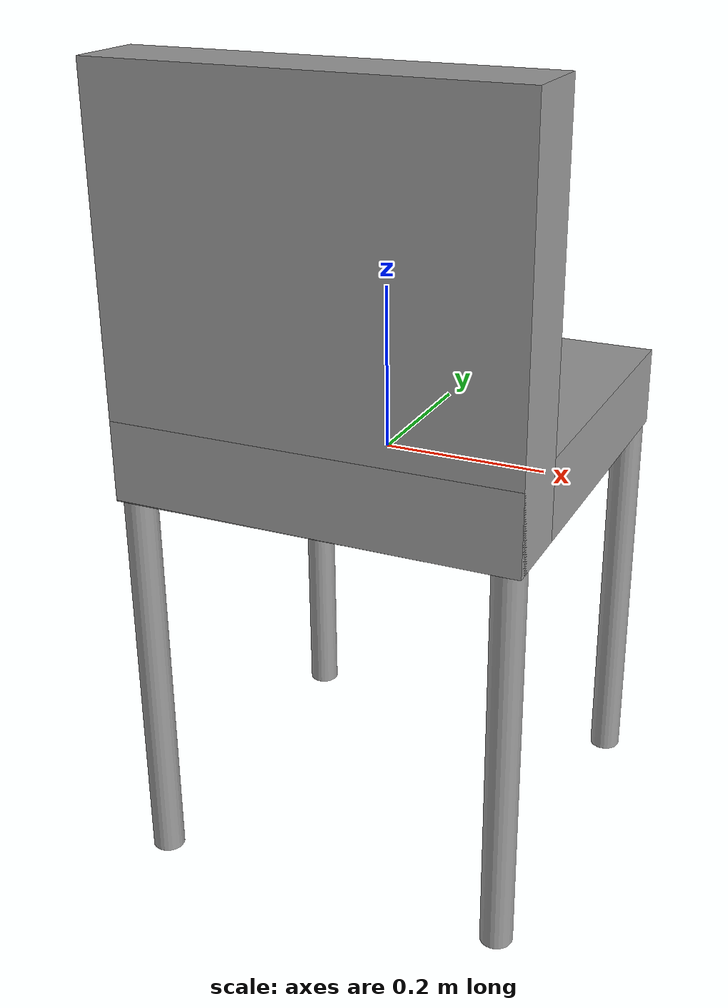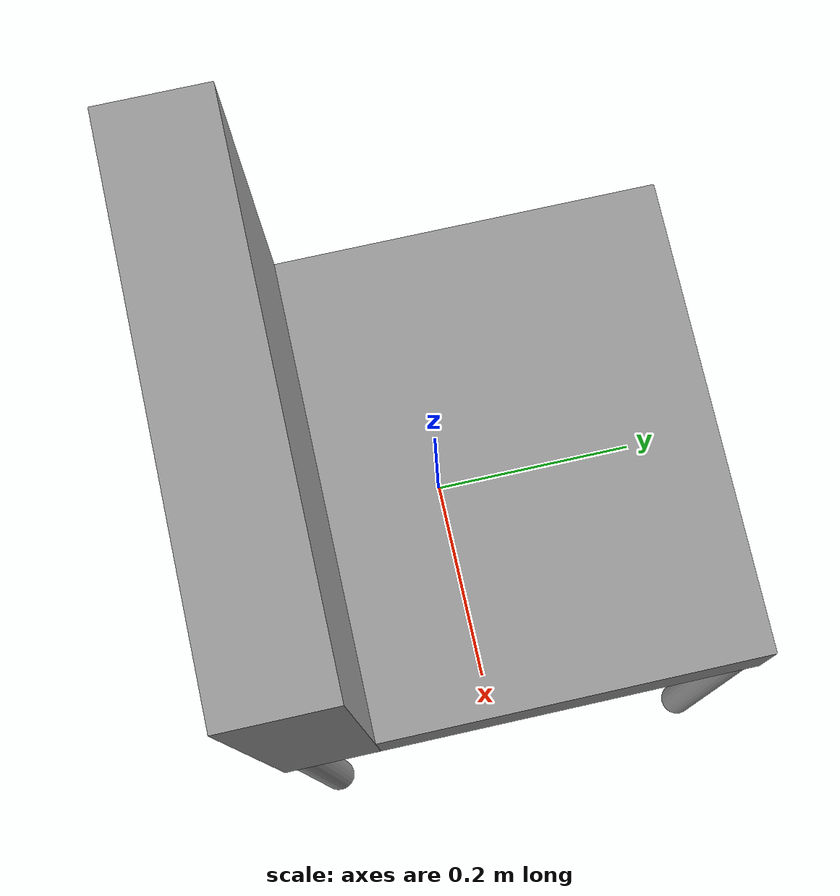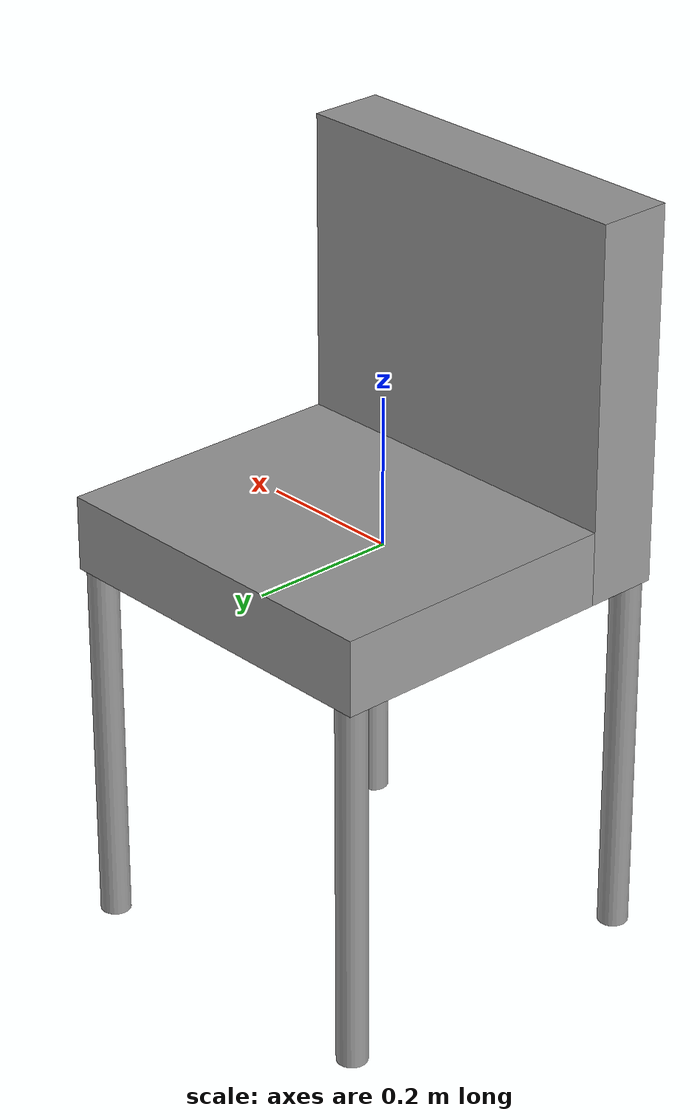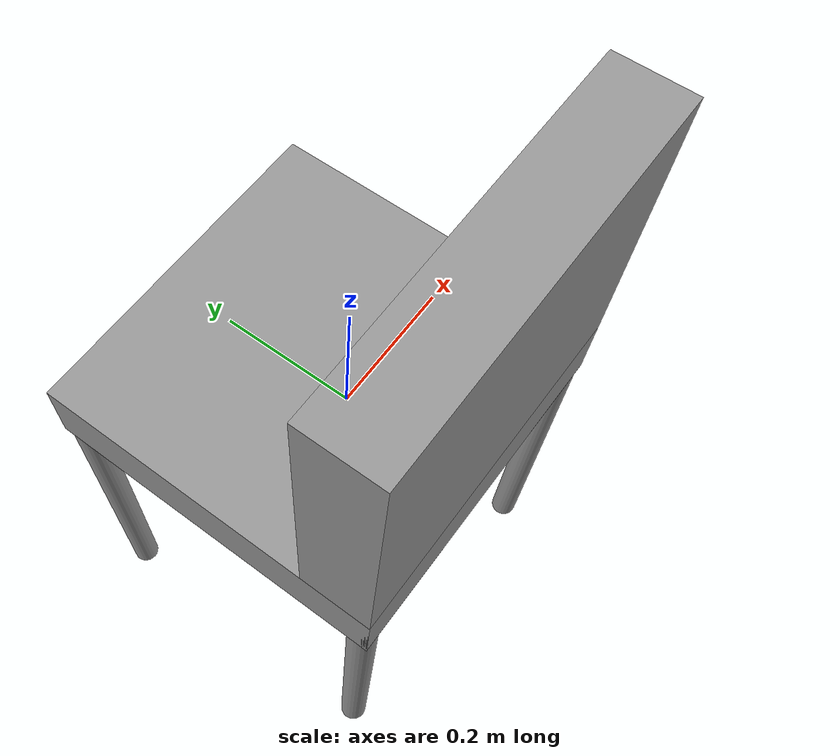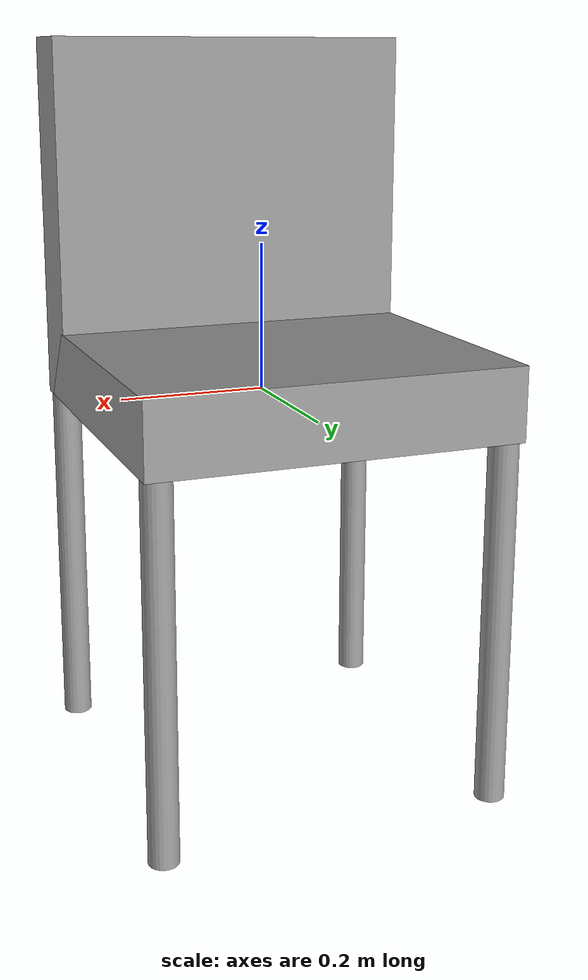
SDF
<?xml version='1.0'?>
<sdf version='1.6'>
  <model name='chair'>
    <link name='link_0'>
      <inertial>
        <mass>1</mass>
        <inertia>
          <ixx>0.145833</ixx>
          <ixy>0</ixy>
          <ixz>0</ixz>
          <iyy>0.145833</iyy>
          <iyz>0</iyz>
          <izz>0.125</izz>
        </inertia>
        <pose frame=''>0 0 0 0 -0 0</pose>
      </inertial>
      <pose frame=''>-0.23 -0.19667 -0.280001 0 -0 0</pose>
      <gravity>1</gravity>
      <self_collide>0</self_collide>
      <kinematic>0</kinematic>
      <enable_wind>0</enable_wind>
      <visual name='visual'>
        <pose frame=''>0 0 0 0 -0 0</pose>
        <geometry>
          <cylinder>
            <radius>0.02</radius>
            <length>0.5</length>
          </cylinder>
        </geometry>
        <material>
          <lighting>1</lighting>
          <script>
            <uri>file://media/materials/scripts/gazebo.material</uri>
            <name>Gazebo/Grey</name>
          </script>
          <shader type='vertex'>
            <normal_map>__default__</normal_map>
          </shader>
          <ambient>0.3 0.3 0.3 1</ambient>
          <diffuse>0.7 0.7 0.7 1</diffuse>
          <specular>0.01 0.01 0.01 1</specular>
          <emissive>0 0 0 1</emissive>
        </material>
        <transparency>0</transparency>
        <cast_shadows>1</cast_shadows>
      </visual>
      <collision name='collision'>
        <laser_retro>0</laser_retro>
        <max_contacts>10</max_contacts>
        <pose frame=''>0 0 0 0 -0 0</pose>
        <geometry>
          <cylinder>
            <radius>0.02</radius>
            <length>0.5</length>
          </cylinder>
        </geometry>
        <surface>
          <friction>
            <ode>
              <mu>1</mu>
              <mu2>1</mu2>
              <fdir1>0 0 0</fdir1>
              <slip1>0</slip1>
              <slip2>0</slip2>
            </ode>
            <torsional>
              <coefficient>1</coefficient>
              <patch_radius>0</patch_radius>
              <surface_radius>0</surface_radius>
              <use_patch_radius>1</use_patch_radius>
              <ode>
                <slip>0</slip>
              </ode>
            </torsional>
          </friction>
          <bounce>
            <restitution_coefficient>0</restitution_coefficient>
            <threshold>1e+06</threshold>
          </bounce>
          <contact>
            <collide_without_contact>0</collide_without_contact>
            <collide_without_contact_bitmask>1</collide_without_contact_bitmask>
            <collide_bitmask>1</collide_bitmask>
            <ode>
              <soft_cfm>0</soft_cfm>
              <soft_erp>0.2</soft_erp>
              <kp>1e+13</kp>
              <kd>1</kd>
              <max_vel>0.01</max_vel>
              <min_depth>0</min_depth>
            </ode>
            <bullet>
              <split_impulse>1</split_impulse>
              <split_impulse_penetration_threshold>-0.01</split_impulse_penetration_threshold>
              <soft_cfm>0</soft_cfm>
              <soft_erp>0.2</soft_erp>
              <kp>1e+13</kp>
              <kd>1</kd>
            </bullet>
          </contact>
        </surface>
      </collision>
    </link>
    <link name='link_0_clone'>
      <inertial>
        <mass>1</mass>
        <inertia>
          <ixx>0.145833</ixx>
          <ixy>0</ixy>
          <ixz>0</ixz>
          <iyy>0.145833</iyy>
          <iyz>0</iyz>
          <izz>0.125</izz>
        </inertia>
        <pose frame=''>0 0 0 0 -0 0</pose>
      </inertial>
      <pose frame=''>0.23 -0.19667 -0.280001 0 -0 0</pose>
      <gravity>1</gravity>
      <self_collide>0</self_collide>
      <kinematic>0</kinematic>
      <enable_wind>0</enable_wind>
      <visual name='visual'>
        <pose frame=''>0 0 0 0 -0 0</pose>
        <geometry>
          <cylinder>
            <radius>0.02</radius>
            <length>0.5</length>
          </cylinder>
        </geometry>
        <material>
          <lighting>1</lighting>
          <script>
            <uri>file://media/materials/scripts/gazebo.material</uri>
            <name>Gazebo/Grey</name>
          </script>
          <shader type='vertex'>
            <normal_map>__default__</normal_map>
          </shader>
          <ambient>0.3 0.3 0.3 1</ambient>
          <diffuse>0.7 0.7 0.7 1</diffuse>
          <specular>0.01 0.01 0.01 1</specular>
          <emissive>0 0 0 1</emissive>
        </material>
        <transparency>0</transparency>
        <cast_shadows>1</cast_shadows>
      </visual>
      <collision name='collision'>
        <laser_retro>0</laser_retro>
        <max_contacts>10</max_contacts>
        <pose frame=''>0 0 0 0 -0 0</pose>
        <geometry>
          <cylinder>
            <radius>0.02</radius>
            <length>0.5</length>
          </cylinder>
        </geometry>
        <surface>
          <friction>
            <ode>
              <mu>1</mu>
              <mu2>1</mu2>
              <fdir1>0 0 0</fdir1>
              <slip1>0</slip1>
              <slip2>0</slip2>
            </ode>
            <torsional>
              <coefficient>1</coefficient>
              <patch_radius>0</patch_radius>
              <surface_radius>0</surface_radius>
              <use_patch_radius>1</use_patch_radius>
              <ode>
                <slip>0</slip>
              </ode>
            </torsional>
          </friction>
          <bounce>
            <restitution_coefficient>0</restitution_coefficient>
            <threshold>1e+06</threshold>
          </bounce>
          <contact>
            <collide_without_contact>0</collide_without_contact>
            <collide_without_contact_bitmask>1</collide_without_contact_bitmask>
            <collide_bitmask>1</collide_bitmask>
            <ode>
              <soft_cfm>0</soft_cfm>
              <soft_erp>0.2</soft_erp>
              <kp>1e+13</kp>
              <kd>1</kd>
              <max_vel>0.01</max_vel>
              <min_depth>0</min_depth>
            </ode>
            <bullet>
              <split_impulse>1</split_impulse>
              <split_impulse_penetration_threshold>-0.01</split_impulse_penetration_threshold>
              <soft_cfm>0</soft_cfm>
              <soft_erp>0.2</soft_erp>
              <kp>1e+13</kp>
              <kd>1</kd>
            </bullet>
          </contact>
        </surface>
      </collision>
    </link>
    <link name='link_0_clone_0'>
      <inertial>
        <mass>1</mass>
        <inertia>
          <ixx>0.145833</ixx>
          <ixy>0</ixy>
          <ixz>0</ixz>
          <iyy>0.145833</iyy>
          <iyz>0</iyz>
          <izz>0.125</izz>
        </inertia>
        <pose frame=''>0 0 0 0 -0 0</pose>
      </inertial>
      <pose frame=''>0.23 0.26333 -0.280001 0 -0 0</pose>
      <gravity>1</gravity>
      <self_collide>0</self_collide>
      <kinematic>0</kinematic>
      <enable_wind>0</enable_wind>
      <visual name='visual'>
        <pose frame=''>0 0 0 0 -0 0</pose>
        <geometry>
          <cylinder>
            <radius>0.02</radius>
            <length>0.5</length>
          </cylinder>
        </geometry>
        <material>
          <lighting>1</lighting>
          <script>
            <uri>file://media/materials/scripts/gazebo.material</uri>
            <name>Gazebo/Grey</name>
          </script>
          <shader type='vertex'>
            <normal_map>__default__</normal_map>
          </shader>
          <ambient>0.3 0.3 0.3 1</ambient>
          <diffuse>0.7 0.7 0.7 1</diffuse>
          <specular>0.01 0.01 0.01 1</specular>
          <emissive>0 0 0 1</emissive>
        </material>
        <transparency>0</transparency>
        <cast_shadows>1</cast_shadows>
      </visual>
      <collision name='collision'>
        <laser_retro>0</laser_retro>
        <max_contacts>10</max_contacts>
        <pose frame=''>0 0 0 0 -0 0</pose>
        <geometry>
          <cylinder>
            <radius>0.02</radius>
            <length>0.5</length>
          </cylinder>
        </geometry>
        <surface>
          <friction>
            <ode>
              <mu>1</mu>
              <mu2>1</mu2>
              <fdir1>0 0 0</fdir1>
              <slip1>0</slip1>
              <slip2>0</slip2>
            </ode>
            <torsional>
              <coefficient>1</coefficient>
              <patch_radius>0</patch_radius>
              <surface_radius>0</surface_radius>
              <use_patch_radius>1</use_patch_radius>
              <ode>
                <slip>0</slip>
              </ode>
            </torsional>
          </friction>
          <bounce>
            <restitution_coefficient>0</restitution_coefficient>
            <threshold>1e+06</threshold>
          </bounce>
          <contact>
            <collide_without_contact>0</collide_without_contact>
            <collide_without_contact_bitmask>1</collide_without_contact_bitmask>
            <collide_bitmask>1</collide_bitmask>
            <ode>
              <soft_cfm>0</soft_cfm>
              <soft_erp>0.2</soft_erp>
              <kp>1e+13</kp>
              <kd>1</kd>
              <max_vel>0.01</max_vel>
              <min_depth>0</min_depth>
            </ode>
            <bullet>
              <split_impulse>1</split_impulse>
              <split_impulse_penetration_threshold>-0.01</split_impulse_penetration_threshold>
              <soft_cfm>0</soft_cfm>
              <soft_erp>0.2</soft_erp>
              <kp>1e+13</kp>
              <kd>1</kd>
            </bullet>
          </contact>
        </surface>
      </collision>
    </link>
    <link name='link_0_clone_1'>
      <inertial>
        <mass>1</mass>
        <inertia>
          <ixx>0.145833</ixx>
          <ixy>0</ixy>
          <ixz>0</ixz>
          <iyy>0.145833</iyy>
          <iyz>0</iyz>
          <izz>0.125</izz>
        </inertia>
        <pose frame=''>0 0 0 0 -0 0</pose>
      </inertial>
      <pose frame=''>-0.23 0.26333 -0.280001 0 -0 0</pose>
      <gravity>1</gravity>
      <self_collide>0</self_collide>
      <kinematic>0</kinematic>
      <enable_wind>0</enable_wind>
      <visual name='visual'>
        <pose frame=''>0 0 0 0 -0 0</pose>
        <geometry>
          <cylinder>
            <radius>0.02</radius>
            <length>0.5</length>
          </cylinder>
        </geometry>
        <material>
          <lighting>1</lighting>
          <script>
            <uri>file://media/materials/scripts/gazebo.material</uri>
            <name>Gazebo/Grey</name>
          </script>
          <shader type='vertex'>
            <normal_map>__default__</normal_map>
          </shader>
          <ambient>0.3 0.3 0.3 1</ambient>
          <diffuse>0.7 0.7 0.7 1</diffuse>
          <specular>0.01 0.01 0.01 1</specular>
          <emissive>0 0 0 1</emissive>
        </material>
        <transparency>0</transparency>
        <cast_shadows>1</cast_shadows>
      </visual>
      <collision name='collision'>
        <laser_retro>0</laser_retro>
        <max_contacts>10</max_contacts>
        <pose frame=''>0 0 0 0 -0 0</pose>
        <geometry>
          <cylinder>
            <radius>0.02</radius>
            <length>0.5</length>
          </cylinder>
        </geometry>
        <surface>
          <friction>
            <ode>
              <mu>1</mu>
              <mu2>1</mu2>
              <fdir1>0 0 0</fdir1>
              <slip1>0</slip1>
              <slip2>0</slip2>
            </ode>
            <torsional>
              <coefficient>1</coefficient>
              <patch_radius>0</patch_radius>
              <surface_radius>0</surface_radius>
              <use_patch_radius>1</use_patch_radius>
              <ode>
                <slip>0</slip>
              </ode>
            </torsional>
          </friction>
          <bounce>
            <restitution_coefficient>0</restitution_coefficient>
            <threshold>1e+06</threshold>
          </bounce>
          <contact>
            <collide_without_contact>0</collide_without_contact>
            <collide_without_contact_bitmask>1</collide_without_contact_bitmask>
            <collide_bitmask>1</collide_bitmask>
            <ode>
              <soft_cfm>0</soft_cfm>
              <soft_erp>0.2</soft_erp>
              <kp>1e+13</kp>
              <kd>1</kd>
              <max_vel>0.01</max_vel>
              <min_depth>0</min_depth>
            </ode>
            <bullet>
              <split_impulse>1</split_impulse>
              <split_impulse_penetration_threshold>-0.01</split_impulse_penetration_threshold>
              <soft_cfm>0</soft_cfm>
              <soft_erp>0.2</soft_erp>
              <kp>1e+13</kp>
              <kd>1</kd>
            </bullet>
          </contact>
        </surface>
      </collision>
    </link>
    <link name='link_2'>
      <inertial>
        <mass>1</mass>
        <inertia>
          <ixx>0.166667</ixx>
          <ixy>0</ixy>
          <ixz>0</ixz>
          <iyy>0.166667</iyy>
          <iyz>0</iyz>
          <izz>0.166667</izz>
        </inertia>
        <pose frame=''>0 0 0 0 -0 0</pose>
      </inertial>
      <pose frame=''>0 0.03333 0.019999 0 -0 0</pose>
      <gravity>1</gravity>
      <self_collide>0</self_collide>
      <kinematic>0</kinematic>
      <enable_wind>0</enable_wind>
      <visual name='visual'>
        <pose frame=''>0 0 0 0 -0 0</pose>
        <geometry>
          <box>
            <size>0.5 0.5 0.1</size>
          </box>
        </geometry>
        <material>
          <lighting>1</lighting>
          <script>
            <uri>file://media/materials/scripts/gazebo.material</uri>
            <name>Gazebo/Grey</name>
          </script>
          <shader type='vertex'>
            <normal_map>__default__</normal_map>
          </shader>
          <ambient>0.3 0.3 0.3 1</ambient>
          <diffuse>0.7 0.7 0.7 1</diffuse>
          <specular>0.01 0.01 0.01 1</specular>
          <emissive>0 0 0 1</emissive>
        </material>
        <transparency>0</transparency>
        <cast_shadows>1</cast_shadows>
      </visual>
      <collision name='collision'>
        <laser_retro>0</laser_retro>
        <max_contacts>10</max_contacts>
        <pose frame=''>0 0 0 0 -0 0</pose>
        <geometry>
          <box>
            <size>0.5 0.5 0.1</size>
          </box>
        </geometry>
        <surface>
          <friction>
            <ode>
              <mu>1</mu>
              <mu2>1</mu2>
              <fdir1>0 0 0</fdir1>
              <slip1>0</slip1>
              <slip2>0</slip2>
            </ode>
            <torsional>
              <coefficient>1</coefficient>
              <patch_radius>0</patch_radius>
              <surface_radius>0</surface_radius>
              <use_patch_radius>1</use_patch_radius>
              <ode>
                <slip>0</slip>
              </ode>
            </torsional>
          </friction>
          <bounce>
            <restitution_coefficient>0</restitution_coefficient>
            <threshold>1e+06</threshold>
          </bounce>
          <contact>
            <collide_without_contact>0</collide_without_contact>
            <collide_without_contact_bitmask>1</collide_without_contact_bitmask>
            <collide_bitmask>1</collide_bitmask>
            <ode>
              <soft_cfm>0</soft_cfm>
              <soft_erp>0.2</soft_erp>
              <kp>1e+13</kp>
              <kd>1</kd>
              <max_vel>0.01</max_vel>
              <min_depth>0</min_depth>
            </ode>
            <bullet>
              <split_impulse>1</split_impulse>
              <split_impulse_penetration_threshold>-0.01</split_impulse_penetration_threshold>
              <soft_cfm>0</soft_cfm>
              <soft_erp>0.2</soft_erp>
              <kp>1e+13</kp>
              <kd>1</kd>
            </bullet>
          </contact>
        </surface>
      </collision>
    </link>
    <link name='link_2_clone'>
      <inertial>
        <mass>1</mass>
        <inertia>
          <ixx>0.166667</ixx>
          <ixy>0</ixy>
          <ixz>0</ixz>
          <iyy>0.166667</iyy>
          <iyz>0</iyz>
          <izz>0.166667</izz>
        </inertia>
        <pose frame=''>0 0 0 0 -0 0</pose>
      </inertial>
      <pose frame=''>0 -0.166646 0.220004 1.5707 -0 0</pose>
      <gravity>1</gravity>
      <self_collide>0</self_collide>
      <kinematic>0</kinematic>
      <enable_wind>0</enable_wind>
      <visual name='visual'>
        <pose frame=''>0 0 0 0 -0 0</pose>
        <geometry>
          <box>
            <size>0.5 0.5 0.1</size>
          </box>
        </geometry>
        <material>
          <lighting>1</lighting>
          <script>
            <uri>file://media/materials/scripts/gazebo.material</uri>
            <name>Gazebo/Grey</name>
          </script>
          <shader type='vertex'>
            <normal_map>__default__</normal_map>
          </shader>
          <ambient>0.3 0.3 0.3 1</ambient>
          <diffuse>0.7 0.7 0.7 1</diffuse>
          <specular>0.01 0.01 0.01 1</specular>
          <emissive>0 0 0 1</emissive>
        </material>
        <transparency>0</transparency>
        <cast_shadows>1</cast_shadows>
      </visual>
      <collision name='collision'>
        <laser_retro>0</laser_retro>
        <max_contacts>10</max_contacts>
        <pose frame=''>0 0 0 0 -0 0</pose>
        <geometry>
          <box>
            <size>0.5 0.5 0.1</size>
          </box>
        </geometry>
        <surface>
          <friction>
            <ode>
              <mu>1</mu>
              <mu2>1</mu2>
              <fdir1>0 0 0</fdir1>
              <slip1>0</slip1>
              <slip2>0</slip2>
            </ode>
            <torsional>
              <coefficient>1</coefficient>
              <patch_radius>0</patch_radius>
              <surface_radius>0</surface_radius>
              <use_patch_radius>1</use_patch_radius>
              <ode>
                <slip>0</slip>
              </ode>
            </torsional>
          </friction>
          <bounce>
            <restitution_coefficient>0</restitution_coefficient>
            <threshold>1e+06</threshold>
          </bounce>
          <contact>
            <collide_without_contact>0</collide_without_contact>
            <collide_without_contact_bitmask>1</collide_without_contact_bitmask>
            <collide_bitmask>1</collide_bitmask>
            <ode>
              <soft_cfm>0</soft_cfm>
              <soft_erp>0.2</soft_erp>
              <kp>1e+13</kp>
              <kd>1</kd>
              <max_vel>0.01</max_vel>
              <min_depth>0</min_depth>
            </ode>
            <bullet>
              <split_impulse>1</split_impulse>
              <split_impulse_penetration_threshold>-0.01</split_impulse_penetration_threshold>
              <soft_cfm>0</soft_cfm>
              <soft_erp>0.2</soft_erp>
              <kp>1e+13</kp>
              <kd>1</kd>
            </bullet>
          </contact>
        </surface>
      </collision>
    </link>
    <joint name='link_0_clone_JOINT_2' type='fixed'>
      <parent>link_2</parent>
      <child>link_0_clone</child>
      <pose frame=''>0 0 0 0 -0 0</pose>
      <physics>
        <ode>
          <limit>
            <cfm>0</cfm>
            <erp>0.2</erp>
          </limit>
          <suspension>
            <cfm>0</cfm>
            <erp>0.2</erp>
          </suspension>
        </ode>
      </physics>
    </joint>
    <joint name='link_2_JOINT_1' type='fixed'>
      <parent>link_2</parent>
      <child>link_0</child>
      <pose frame=''>0 0 0 0 -0 0</pose>
      <physics>
        <ode>
          <limit>
            <cfm>0</cfm>
            <erp>0.2</erp>
          </limit>
          <suspension>
            <cfm>0</cfm>
            <erp>0.2</erp>
          </suspension>
        </ode>
      </physics>
    </joint>
    <joint name='link_2_JOINT_3' type='fixed'>
      <parent>link_2</parent>
      <child>link_0_clone_0</child>
      <pose frame=''>0 0 0 0 -0 0</pose>
      <physics>
        <ode>
          <limit>
            <cfm>0</cfm>
            <erp>0.2</erp>
          </limit>
          <suspension>
            <cfm>0</cfm>
            <erp>0.2</erp>
          </suspension>
        </ode>
      </physics>
    </joint>
    <joint name='link_2_JOINT_4' type='fixed'>
      <parent>link_2</parent>
      <child>link_0_clone_1</child>
      <pose frame=''>0 0 0 0 -0 0</pose>
      <physics>
        <ode>
          <limit>
            <cfm>0</cfm>
            <erp>0.2</erp>
          </limit>
          <suspension>
            <cfm>0</cfm>
            <erp>0.2</erp>
          </suspension>
        </ode>
      </physics>
    </joint>
    <joint name='link_2_JOINT_5' type='fixed'>
      <parent>link_2</parent>
      <child>link_2_clone</child>
      <pose frame=''>0 0 0 0 -0 0</pose>
      <physics>
        <ode>
          <limit>
            <cfm>0</cfm>
            <erp>0.2</erp>
          </limit>
          <suspension>
            <cfm>0</cfm>
            <erp>0.2</erp>
          </suspension>
        </ode>
      </physics>
    </joint>
    <static>0</static>
    <allow_auto_disable>1</allow_auto_disable>
  </model>
</sdf>
